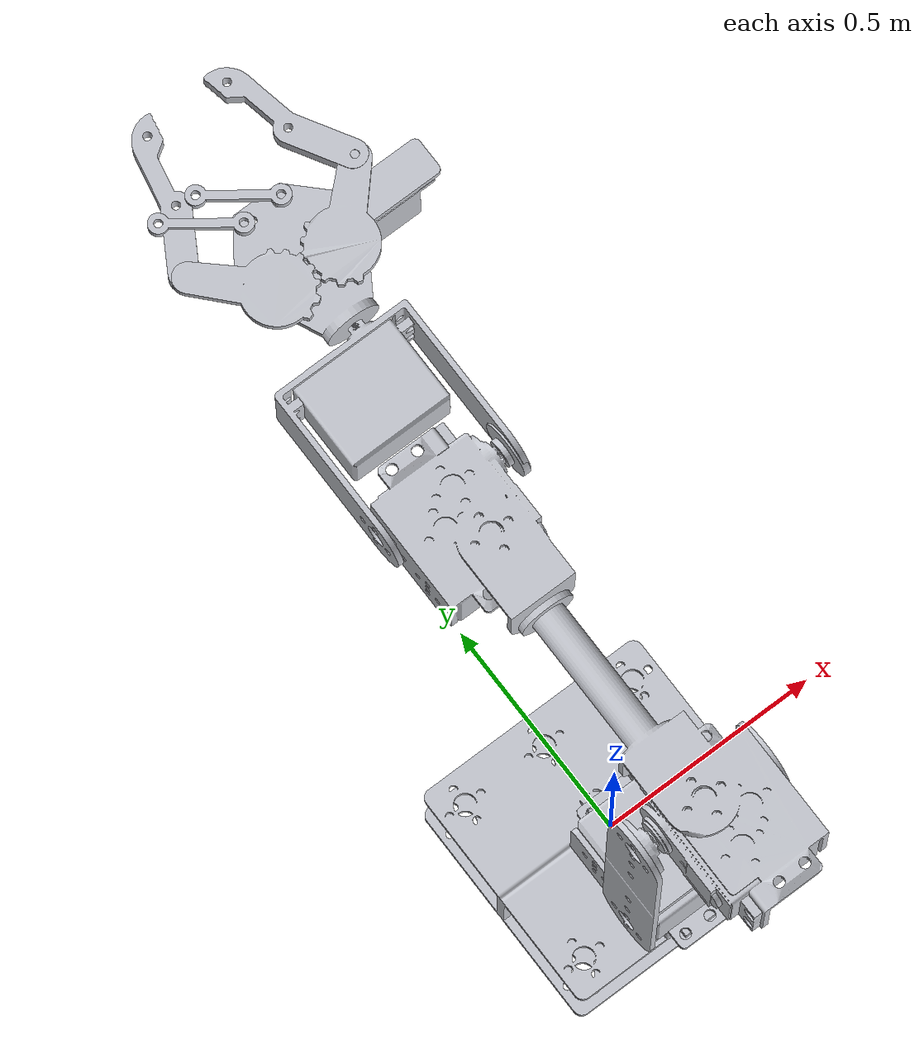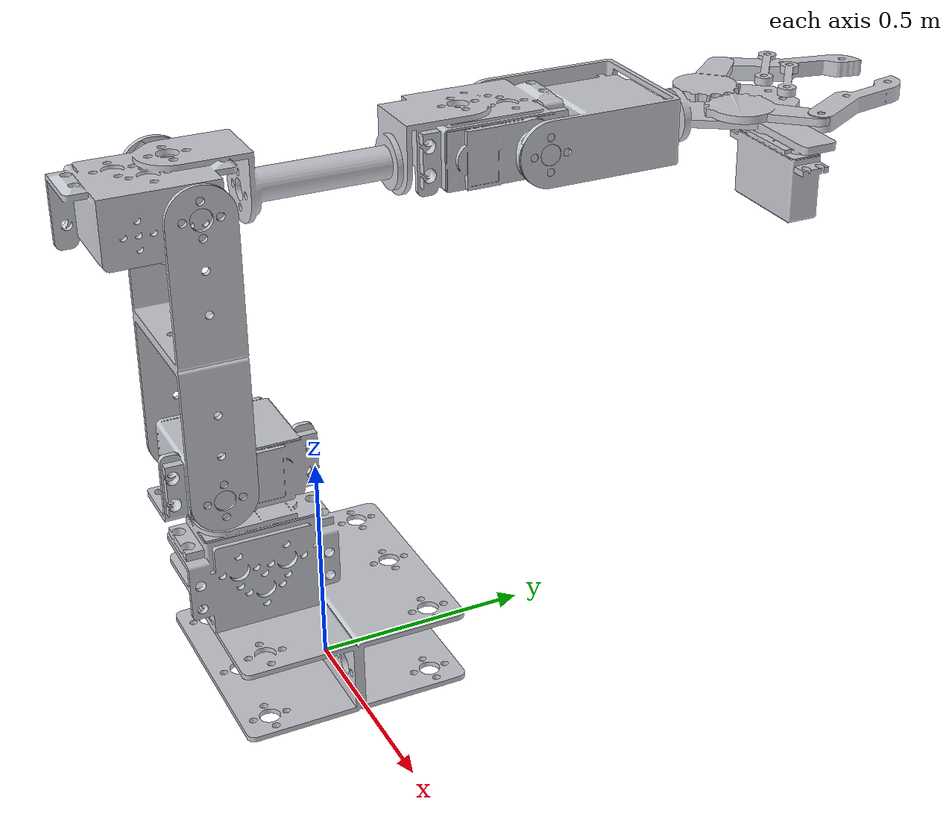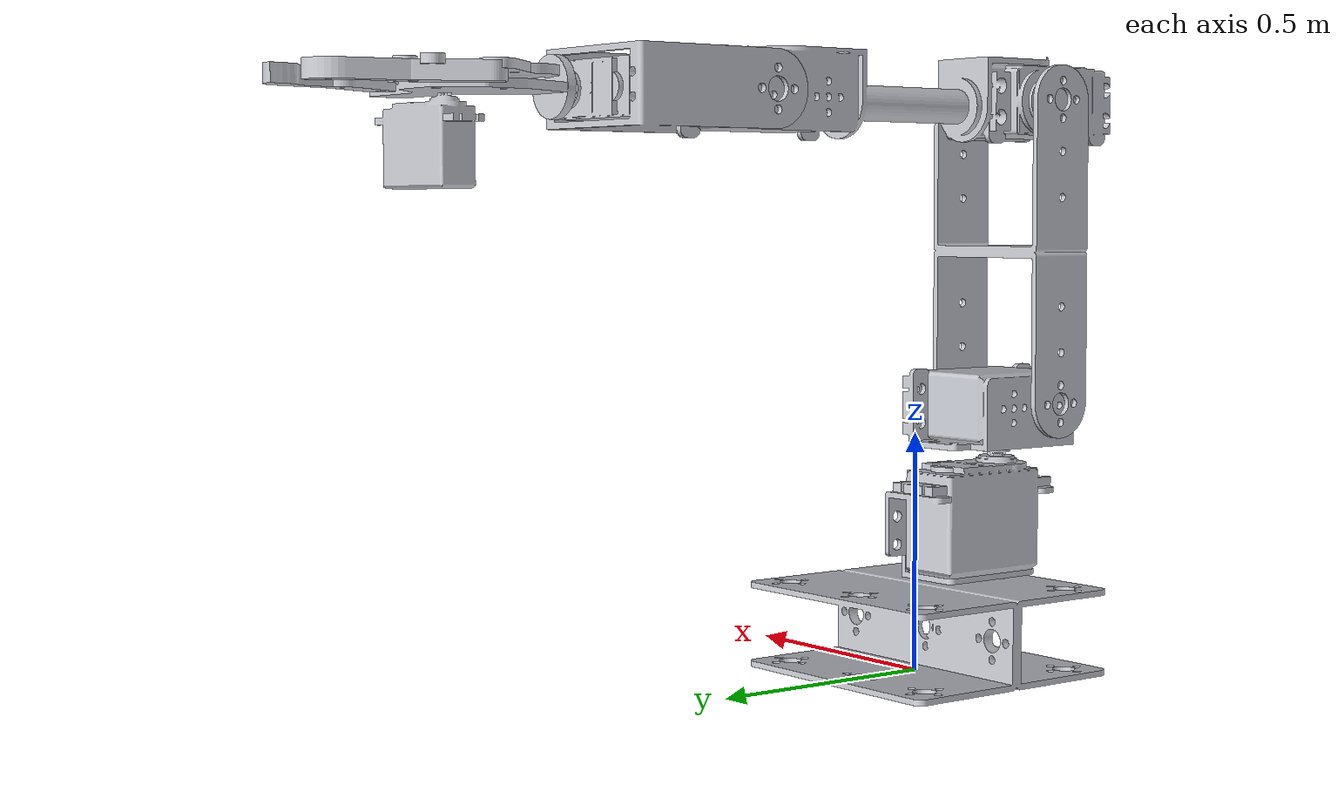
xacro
<?xml version="1.0"?>

<robot xmlns:xacro="http://www.ros.org/wiki/xacro" name="servo6dof_description">

	<xacro:arg name="is_ignition" default="true"/>

	<xacro:include filename="$(find servo6dof_description)/urdf/servo6dof_gazebo.xacro"/>
	<xacro:include filename="$(find servo6dof_description)/urdf/servo6dof_ros2_control.xacro"/>

	<xacro:property name="PI" value="3.14159"/>
	<xacro:property name="effort" value="30.0"/>
	<xacro:property name="velocity" value="10.0"/>

	<xacro:macro name="default_inertial" params="mass">
		<inertial>
			<mass value = "${mass}"/>
			<inertia ixx="1.0" ixy="0.0" ixz="0.0"
					 iyy="1.0" iyz="0.0"
					 izz="1.0"/>
		</inertial>
	</xacro:macro>

	<link name="world"/>
	<link name="base_link">
		<xacro:default_inertial mass="1.0"/>
		<visual>
			<origin rpy="0 0 0" xyz="0.25 0.25 0"/>
			<geometry>
				<mesh filename="package://servo6dof_description/meshes/basement.stl" scale="6 6 6"/>
			</geometry>
			<material name="aluminio">
				<color rgba="0.78 0.79 0.82 1.0"/>
			</material>

		</visual>
		<collision>
			<origin rpy="0 0 0" xyz="0.25 0.25 0"/>
			<geometry>
				<mesh filename="package://servo6dof_description/meshes/basement.stl" scale="6 6 6"/>
			</geometry>
		</collision>
	</link>
	<joint name="virtual_joint" type="fixed">
		<parent link="world"/>
		<child link="base_link"/>
		<origin rpy="0 0 0" xyz="0 0 0"/>
	</joint>

	<link name="primeiro_elo">
		<xacro:default_inertial mass="0.1"/>
		<visual>
			<origin rpy="0 0 0" xyz="0.25 0.57 0"/>
			<geometry>
				<mesh filename="package://servo6dof_description/meshes/manipulator_elo1.stl" scale="6 6 6"/>
			</geometry>
			<material name="aluminio">
				<color rgba="0.78 0.79 0.82 1.0"/>
			</material>

		</visual>
		<collision>
			<origin rpy="0 0 0" xyz="0.25 0.57 0"/>
			<geometry>
				<mesh filename="package://servo6dof_description/meshes/manipulator_elo1.stl" scale="6 6 6"/>
			</geometry>
		</collision>
	</link>
	<joint name="joint_1" type="revolute">
		<parent link="base_link"/>
		<child link="primeiro_elo"/>
		<axis xyz="0 0 1"/>
		<origin rpy="0 0 0" xyz="0 -0.23 -0.01"/>
		<limit lower="-${PI/2}" upper="${PI/2}" effort="${effort}" velocity="${velocity}"/>
	</joint>
	<link name="segundo_elo">
		<xacro:default_inertial mass="0.1"/>
		<visual>
			<origin rpy="0 0 0" xyz="0.3 0.6 -0.55"/>
			<geometry>
				<mesh filename="package://servo6dof_description/meshes/manipulator_elo2.stl" scale="6 6 6"/>
			</geometry>
			<material name="aluminio">
				<color rgba="0.78 0.79 0.82 1.0"/>
			</material>

		</visual>
		<collision>
			<origin rpy="0 0 0" xyz="0.3 0.6 -0.55"/>
			<geometry>
				<mesh filename="package://servo6dof_description/meshes/manipulator_elo2.stl" scale="6 6 6"/>
			</geometry>
		</collision>
	</link>
	<joint name="joint_2" type="revolute">
		<parent link="primeiro_elo"/>
		<child link="segundo_elo"/>
		<axis xyz="1 0 0"/>
		<origin rpy="0 0 0" xyz="-0.05 -0.03 0.57"/>
		<limit lower="-${PI/2}" upper="${PI/2}" effort="${effort}" velocity="${velocity}"/>
	</joint>

	<link name="terceiro_elo">
		<xacro:default_inertial mass="0.1"/>
		<visual>
			<origin rpy="0 0 0" xyz="0.25 0.6 -1.18"/>
			<geometry>
				<mesh filename="package://servo6dof_description/meshes/manipulator_elo3.stl" scale="6 6 6"/>
			</geometry>
			<material name="aluminio">
				<color rgba="0.78 0.79 0.82 1.0"/>
			</material>

		</visual>
		<collision>
			<origin rpy="0 0 0" xyz="0.25 0.6 -1.18"/>
			<geometry>
				<mesh filename="package://servo6dof_description/meshes/manipulator_elo3.stl" scale="6 6 6"/>
			</geometry>
		</collision>
	</link>
	<joint name="joint_3" type="revolute">
		<parent link="segundo_elo"/>
		<child link="terceiro_elo"/>
		<axis xyz="1 0 0"/>
		<origin rpy="0 0 0" xyz="0.06 0 0.63"/>
		<limit lower="-${PI/2}" upper="${PI/2}" effort="${effort}" velocity="${velocity}"/>
	</joint>

	<link name="quarto_elo">
		<xacro:default_inertial mass="0.1"/>
		<visual>
			<origin rpy="0 0 0" xyz="0.25 -0.187 -1.18"/>
			<geometry>
				<mesh filename="package://servo6dof_description/meshes/manipulator_elo4.stl" scale="6 6 6"/>
			</geometry>
			<material name="aluminio">
				<color rgba="0.78 0.79 0.82 1.0"/>
			</material>

		</visual>
		<collision>
			<origin rpy="0 0 0" xyz="0.25 -0.187 -1.18"/>
			<geometry>
				<mesh filename="package://servo6dof_description/meshes/manipulator_elo4.stl" scale="6 6 6"/>
			</geometry>
		</collision>
	</link>
	<joint name="joint_4" type="revolute">
		<parent link="terceiro_elo"/>
		<child link="quarto_elo"/>
		<axis xyz="1 0 0"/>
		<origin rpy="0 0 0" xyz="0 0.78 0"/>
		<limit lower="-${PI/2}" upper="${PI/2}" effort="${effort}" velocity="${velocity}"/>
	</joint>

	<link name="base_garra">
		<xacro:default_inertial mass="0.05"/>
		<visual>
			<origin rpy="0 0 ${PI/2}" xyz="0 0 0"/>
			<geometry>
				<mesh filename="package://servo6dof_description/meshes/base_garra.stl" scale="6 6 6"/>
			</geometry>
			<material name="aluminio">
				<color rgba="0.78 0.79 0.82 1.0"/>
			</material>

		</visual>
		<collision>
			<origin rpy="0 0 ${PI/2}" xyz="0 0 0"/>
			<geometry>
				<mesh filename="package://servo6dof_description/meshes/base_garra.stl" scale="6 6 6"/>
			</geometry>
		</collision>
	</link>
	<joint name="joint_5" type="revolute">
		<parent link="quarto_elo"/>
		<child link="base_garra"/>
		<axis xyz="0 1 0"/>
		<origin rpy="0 0 0" xyz="0.02 0.36 0"/>
		<limit lower="-${PI/2}" upper="${PI/2}" effort="${effort}" velocity="${velocity}"/>
	</joint>

	<link name="garra_elo1">
		<xacro:default_inertial mass="0.01"/>
		<visual>
			<origin rpy="0 ${PI} -${PI/2}" xyz="0.07 -0.15 0.05"/>
			<geometry>
				<mesh filename="package://servo6dof_description/meshes/garra_elo1.stl" scale="6 6 6"/>
			</geometry>
			<material name="aluminio">
				<color rgba="0.78 0.79 0.82 1.0"/>
			</material>

		</visual>
		<collision>
			<origin rpy="0 ${PI} -${PI/2}" xyz="0.07 -0.15 0.05"/>
			<geometry>
				<mesh filename="package://servo6dof_description/meshes/garra_elo1.stl" scale="6 6 6"/>
			</geometry>
		</collision>
	</link>
	<joint name="joint_6" type="revolute">
		<parent link="base_garra"/>
		<child link="garra_elo1"/>
		<axis xyz="0 0 1"/>
		<origin rpy="0 0 0" xyz="-0.072 0.12 0.01"/>
		<limit lower="-${40*PI/180}" upper="${30*PI/180}" effort="${effort}" velocity="${velocity}"/>
	</joint>

	<link name="garra_elo2a">
		<xacro:default_inertial mass="0.01"/>
		<visual>
			<origin rpy="0 0 0" xyz="-0.403 0.133 0"/>
			<geometry>
				<mesh filename="package://servo6dof_description/meshes/garra_elo2.stl" scale="6 6 6"/>
			</geometry>
			<material name="aluminio">
				<color rgba="0.78 0.79 0.82 1.0"/>
			</material>

		</visual>
		<collision>
			<origin rpy="0 0 0" xyz="-0.403 0.133 0"/>
			<geometry>
				<mesh filename="package://servo6dof_description/meshes/garra_elo2.stl" scale="6 6 6"/>
			</geometry>
		</collision>
	</link>
	<joint name="joint_garra_1" type="revolute">
		<parent link="base_garra"/>
		<child link="garra_elo2a"/>
		<axis xyz="0 0 1"/>
		<origin rpy="0 0 0" xyz="-0.05 0.27 0.01"/>
		<mimic joint="joint_6" multiplier="1" offset="-0.2" />
		<limit lower="-${PI/2}" upper="${PI/2}" effort="${effort}" velocity="${velocity}"/>
	</joint>

	<link name="garra_elo3a">
		<xacro:default_inertial mass="0.01"/>
		<visual>
			<origin rpy="0 ${PI} 0" xyz="0.28 0.205 0"/>
			<geometry>
				<mesh filename="package://servo6dof_description/meshes/garra_pinca.stl" scale="6 6 6"/>
			</geometry>
			<material name="aluminio">
				<color rgba="0.78 0.79 0.82 1.0"/>
			</material>

		</visual>
		<collision>
			<origin rpy="0 ${PI} 0" xyz="0.28 0.205 0"/>
			<geometry>
				<mesh filename="package://servo6dof_description/meshes/garra_pinca.stl" scale="6 6 6"/>
			</geometry>
		</collision>
	</link>
	<joint name="joint_pinca_a" type="revolute">
		<parent link="garra_elo1"/>
		<child link="garra_elo3a"/>
		<axis xyz="0 0 1"/>
		<origin rpy="0 0 -${PI/2}" xyz="-0.13 0.13 0"/>
		<mimic joint="joint_6" multiplier="-1" offset="0.2" />
		<limit effort="${effort}" velocity="${velocity}"/>
	</joint>

	<link name="garra_elo2">
		<xacro:default_inertial mass="0.01"/>
		<visual>
			<origin rpy="0 0 ${PI/2}" xyz="-0.07 -0.15 -0.03"/>
			<geometry>
				<mesh filename="package://servo6dof_description/meshes/garra_elo1.stl" scale="6 6 6"/>
			</geometry>
			<material name="aluminio">
				<color rgba="0.78 0.79 0.82 1.0"/>
			</material>

		</visual>
		<collision>
			<origin rpy="0 0 ${PI/2}" xyz="-0.07 -0.15 -0.03"/>
			<geometry>
				<mesh filename="package://servo6dof_description/meshes/garra_elo1.stl" scale="6 6 6"/>
			</geometry>
		</collision>
	</link>
	<joint name="joint_7" type="revolute">
		<parent link="base_garra"/>
		<child link="garra_elo2"/>
		<axis xyz="0 0 1"/>
		<origin rpy="0 0 0" xyz="+0.072 0.12 0.01"/>
		<mimic joint="joint_6" multiplier="-1" offset="0" />
		<limit lower="-${30*PI/180}" upper="${30*PI/180}" effort="${effort}" velocity="${velocity}"/>
	</joint>

	<link name="garra_elo2b">
		<xacro:default_inertial mass="0.01"/>
		<visual>
			<origin rpy="0 0 ${PI}" xyz="0.273 -0.036 0"/>
			<geometry>
				<mesh filename="package://servo6dof_description/meshes/garra_elo2.stl" scale="6 6 6"/>
			</geometry>
			<material name="aluminio">
				<color rgba="0.78 0.79 0.82 1.0"/>
			</material>

		</visual>
		<collision>
			<origin rpy="0 0 ${PI}" xyz="0.273 -0.036 0"/>
			<geometry>
				<mesh filename="package://servo6dof_description/meshes/garra_elo2.stl" scale="6 6 6"/>
			</geometry>
		</collision>
	</link>
	<joint name="joint_garra_3" type="revolute">
		<parent link="base_garra"/>
		<child link="garra_elo2b"/>
		<axis xyz="0 0 1"/>
		<origin rpy="0 0 0" xyz="+0.04 0.27 0.01"/>
		<mimic joint="joint_6" multiplier="-1" offset="-1.6708" />
		<limit lower="-${PI/2}" upper="${PI/2}" effort="${effort}" velocity="${velocity}"/>
	</joint>

	<link name="garra_elo3b">
		<xacro:default_inertial mass="0.01"/>
		<visual>
			<origin rpy="0 0 0" xyz="-0.285 0.205 0"/>
			<geometry>
				<mesh filename="package://servo6dof_description/meshes/garra_pinca.stl" scale="6 6 6"/>
			</geometry>
			<material name="aluminio">
				<color rgba="0.78 0.79 0.82 1.0"/>
			</material>

		</visual>
		<collision>
			<origin rpy="0 0 0" xyz="-0.285 0.205 0"/>
			<geometry>
				<mesh filename="package://servo6dof_description/meshes/garra_pinca.stl" scale="6 6 6"/>
			</geometry>
		</collision>
	</link>
	<joint name="joint_pinca_b" type="revolute">
		<parent link="garra_elo2"/>
		<child link="garra_elo3b"/>
		<axis xyz="0 0 1"/>
		<origin rpy="0 0 ${PI/2}" xyz="0.13 0.13 0"/>
		<mimic joint="joint_6" multiplier="1" offset="-0.2" />
		<limit effort="${effort}" velocity="${velocity}"/>
	</joint>

</robot>
